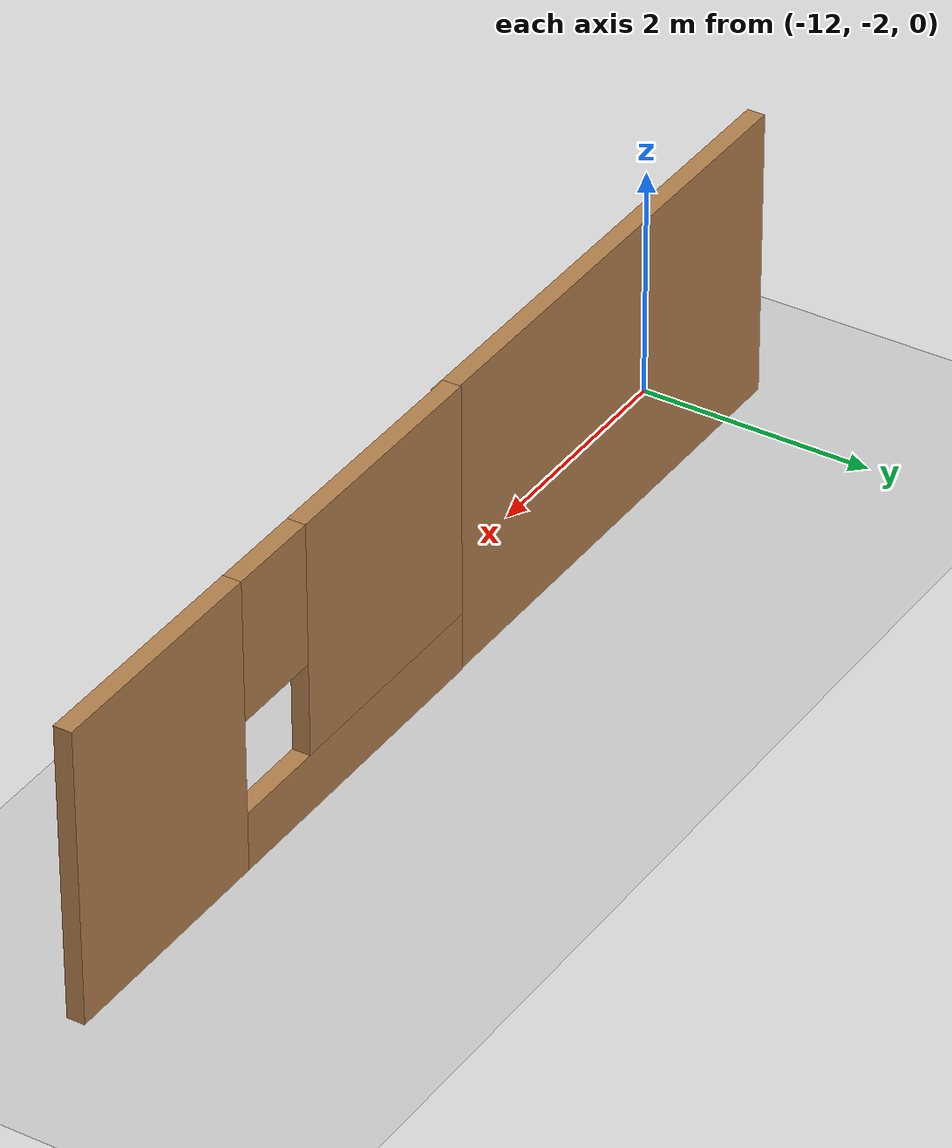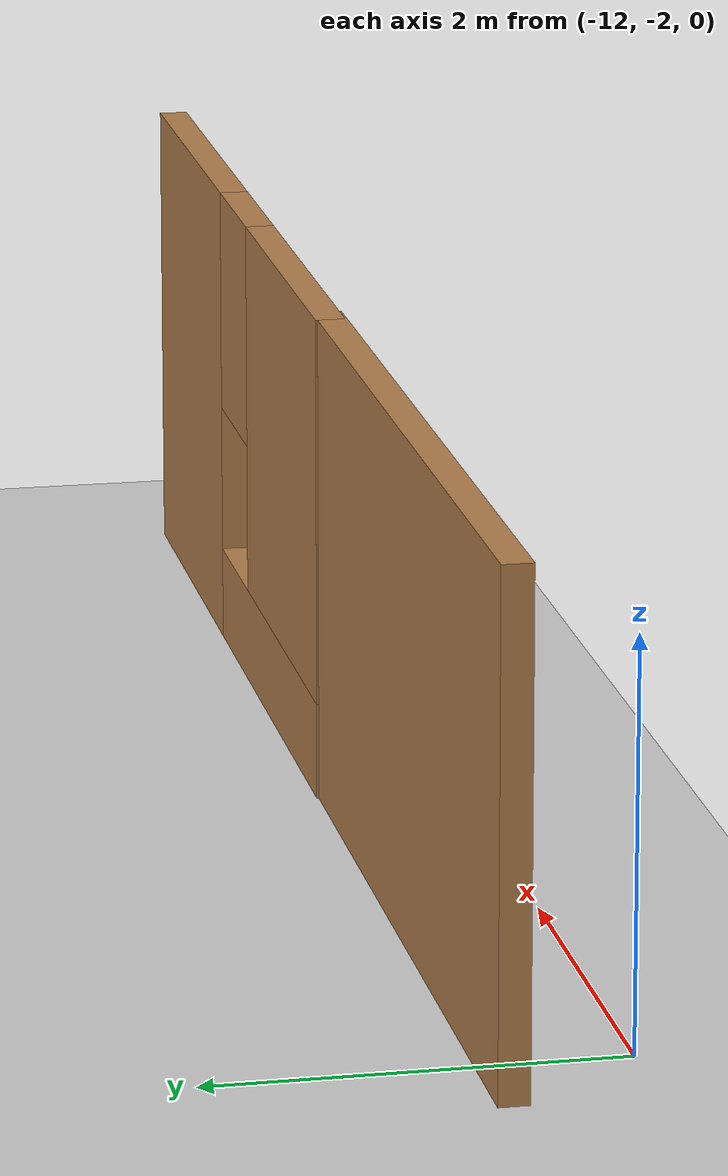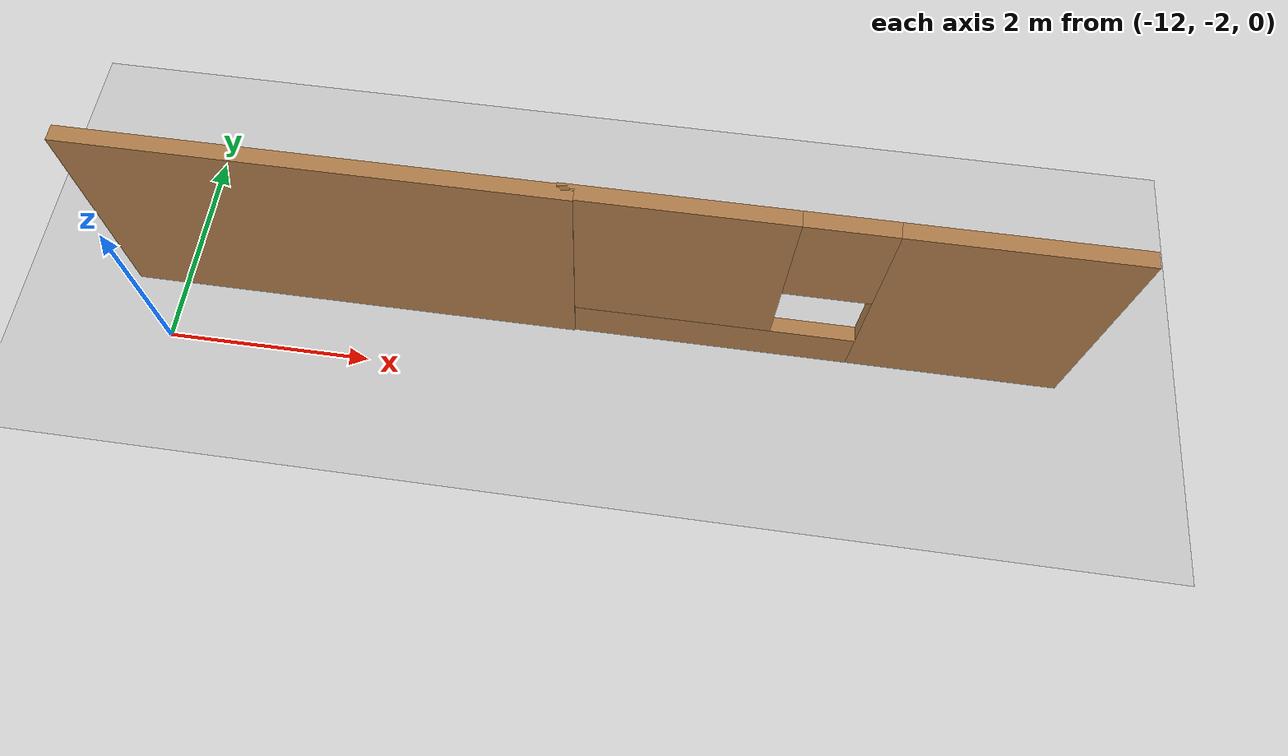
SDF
<sdf version="1.6">
 <world name="default">
  <model name="ground_plane">
   <static>1</static>
   <link name="link">
    <collision name="collision">
     <geometry><plane><normal>0 0 1</normal><size>100 100</size></plane></geometry>
     <surface><friction><ode><mu>100</mu><mu2>50</mu2></ode></friction></surface>
    </collision>
    <visual name="visual">
     <cast_shadows>0</cast_shadows>
     <geometry><plane><normal>0 0 1</normal><size>100 100</size></plane></geometry>
     <material>
      <script><uri>file://media/materials/scripts/gazebo.material</uri><name>Gazebo/Grey</name></script>
     </material>
    </visual>
   </link>
  </model>
  <model name="myHouse">
   <link name="Wall_13">
    <pose>-6.79329 -7.98623 0 0 0 -3.14082</pose>
    <visual name="Wall_13_Visual">
     <pose>0 0 1.25 0 -0 0</pose>
     <geometry><box><size>4.46127 0.15 2.5</size></box></geometry>
     <material>
      <script><uri>file://media/materials/scripts/gazebo.material</uri><name>Gazebo/Wood</name></script>
      <ambient>1 1 1 1</ambient>
      <diffuse>1 1 1 1</diffuse>
      <specular>0.2 0.2 0.2 1</specular>
      <emissive>0 0 0 1</emissive>
     </material>
     <meta><layer>0</layer></meta>
    </visual>
    <collision name="Wall_13_Collision">
     <pose>0 0 1.25 0 -0 0</pose>
     <geometry><box><size>4.46127 0.15 2.5</size></box></geometry>
     <surface>
      <friction>
       <ode><mu>1</mu><mu2>1</mu2><fdir1>0 0 0</fdir1><slip1>0</slip1><slip2>0</slip2></ode>
       <torsional>
        <coefficient>1</coefficient>
        <patch_radius>0</patch_radius>
        <surface_radius>0</surface_radius>
        <use_patch_radius>1</use_patch_radius>
        <ode><slip>0</slip></ode>
       </torsional>
      </friction>
      <bounce><restitution_coefficient>0</restitution_coefficient><threshold>1e+06</threshold></bounce>
      <contact>
       <collide_without_contact>0</collide_without_contact>
       <collide_without_contact_bitmask>1</collide_without_contact_bitmask>
       <collide_bitmask>1</collide_bitmask>
       <ode>
        <soft_cfm>0</soft_cfm>
        <soft_erp>0.2</soft_erp>
        <kp>1e+13</kp>
        <kd>1</kd>
        <max_vel>0.01</max_vel>
        <min_depth>0</min_depth>
       </ode>
       <bullet>
        <split_impulse>1</split_impulse>
        <split_impulse_penetration_threshold>-0.01</split_impulse_penetration_threshold>
        <soft_cfm>0</soft_cfm>
        <soft_erp>0.2</soft_erp>
        <kp>1e+13</kp>
        <kd>1</kd>
       </bullet>
      </contact>
     </surface>
    </collision>
   </link>
   <link name="Wall_7">
    <pose>-2.28871 -7.97269 0 0 0 -3.14079</pose>
    <visual name="Wall_7_Visual_0">
     <pose>-1.40995 0 1.25 0 -0 0</pose>
     <geometry><box><size>2.02832 0.15 2.5</size></box></geometry>
     <material>
      <script><uri>file://media/materials/scripts/gazebo.material</uri><name>Gazebo/Wood</name></script>
      <ambient>1 1 1 1</ambient>
      <diffuse>1 1 1 1</diffuse>
      <specular>0.2 0.2 0.2 1</specular>
      <emissive>0 0 0 1</emissive>
     </material>
     <meta><layer>0</layer></meta>
    </visual>
    <visual name="Wall_7_Visual_1">
     <pose>1.01416 0 0.25 0 -0 0</pose>
     <geometry><box><size>2.81989 0.15 0.5</size></box></geometry>
     <material>
      <script><uri>file://media/materials/scripts/gazebo.material</uri><name>Gazebo/Wood</name></script>
      <ambient>1 1 1 1</ambient>
      <diffuse>1 1 1 1</diffuse>
      <specular>0.2 0.2 0.2 1</specular>
      <emissive>0 0 0 1</emissive>
     </material>
     <meta><layer>0</layer></meta>
    </visual>
    <visual name="Wall_7_Visual_2">
     <pose>1.41416 0 1.5 0 -0 0</pose>
     <geometry><box><size>2.01989 0.15 2</size></box></geometry>
     <material>
      <script><uri>file://media/materials/scripts/gazebo.material</uri><name>Gazebo/Wood</name></script>
      <ambient>1 1 1 1</ambient>
      <diffuse>1 1 1 1</diffuse>
      <specular>0.2 0.2 0.2 1</specular>
      <emissive>0 0 0 1</emissive>
     </material>
     <meta><layer>0</layer></meta>
    </visual>
    <visual name="Wall_7_Visual_3">
     <pose>0.00421 0 1.9 0 -0 0</pose>
     <geometry><box><size>0.8 0.15 1.2</size></box></geometry>
     <material>
      <script><uri>file://media/materials/scripts/gazebo.material</uri><name>Gazebo/Wood</name></script>
      <ambient>1 1 1 1</ambient>
      <diffuse>1 1 1 1</diffuse>
      <specular>0.2 0.2 0.2 1</specular>
      <emissive>0 0 0 1</emissive>
     </material>
     <meta><layer>0</layer></meta>
    </visual>
    <collision name="Wall_7_Collision_0">
     <pose>-1.40995 0 1.25 0 -0 0</pose>
     <geometry><box><size>2.02832 0.15 2.5</size></box></geometry>
     <surface>
      <friction>
       <ode><mu>1</mu><mu2>1</mu2><fdir1>0 0 0</fdir1><slip1>0</slip1><slip2>0</slip2></ode>
       <torsional>
        <coefficient>1</coefficient>
        <patch_radius>0</patch_radius>
        <surface_radius>0</surface_radius>
        <use_patch_radius>1</use_patch_radius>
        <ode><slip>0</slip></ode>
       </torsional>
      </friction>
      <bounce><restitution_coefficient>0</restitution_coefficient><threshold>1e+06</threshold></bounce>
      <contact>
       <collide_without_contact>0</collide_without_contact>
       <collide_without_contact_bitmask>1</collide_without_contact_bitmask>
       <collide_bitmask>1</collide_bitmask>
       <ode>
        <soft_cfm>0</soft_cfm>
        <soft_erp>0.2</soft_erp>
        <kp>1e+13</kp>
        <kd>1</kd>
        <max_vel>0.01</max_vel>
        <min_depth>0</min_depth>
       </ode>
       <bullet>
        <split_impulse>1</split_impulse>
        <split_impulse_penetration_threshold>-0.01</split_impulse_penetration_threshold>
        <soft_cfm>0</soft_cfm>
        <soft_erp>0.2</soft_erp>
        <kp>1e+13</kp>
        <kd>1</kd>
       </bullet>
      </contact>
     </surface>
    </collision>
    <collision name="Wall_7_Collision_1">
     <pose>1.01416 0 0.25 0 -0 0</pose>
     <geometry><box><size>2.81989 0.15 0.5</size></box></geometry>
     <surface>
      <friction>
       <ode><mu>1</mu><mu2>1</mu2><fdir1>0 0 0</fdir1><slip1>0</slip1><slip2>0</slip2></ode>
       <torsional>
        <coefficient>1</coefficient>
        <patch_radius>0</patch_radius>
        <surface_radius>0</surface_radius>
        <use_patch_radius>1</use_patch_radius>
        <ode><slip>0</slip></ode>
       </torsional>
      </friction>
      <bounce><restitution_coefficient>0</restitution_coefficient><threshold>1e+06</threshold></bounce>
      <contact>
       <collide_without_contact>0</collide_without_contact>
       <collide_without_contact_bitmask>1</collide_without_contact_bitmask>
       <collide_bitmask>1</collide_bitmask>
       <ode>
        <soft_cfm>0</soft_cfm>
        <soft_erp>0.2</soft_erp>
        <kp>1e+13</kp>
        <kd>1</kd>
        <max_vel>0.01</max_vel>
        <min_depth>0</min_depth>
       </ode>
       <bullet>
        <split_impulse>1</split_impulse>
        <split_impulse_penetration_threshold>-0.01</split_impulse_penetration_threshold>
        <soft_cfm>0</soft_cfm>
        <soft_erp>0.2</soft_erp>
        <kp>1e+13</kp>
        <kd>1</kd>
       </bullet>
      </contact>
     </surface>
    </collision>
    <collision name="Wall_7_Collision_2">
     <pose>1.41416 0 1.5 0 -0 0</pose>
     <geometry><box><size>2.01989 0.15 2</size></box></geometry>
     <surface>
      <friction>
       <ode><mu>1</mu><mu2>1</mu2><fdir1>0 0 0</fdir1><slip1>0</slip1><slip2>0</slip2></ode>
       <torsional>
        <coefficient>1</coefficient>
        <patch_radius>0</patch_radius>
        <surface_radius>0</surface_radius>
        <use_patch_radius>1</use_patch_radius>
        <ode><slip>0</slip></ode>
       </torsional>
      </friction>
      <bounce><restitution_coefficient>0</restitution_coefficient><threshold>1e+06</threshold></bounce>
      <contact>
       <collide_without_contact>0</collide_without_contact>
       <collide_without_contact_bitmask>1</collide_without_contact_bitmask>
       <collide_bitmask>1</collide_bitmask>
       <ode>
        <soft_cfm>0</soft_cfm>
        <soft_erp>0.2</soft_erp>
        <kp>1e+13</kp>
        <kd>1</kd>
        <max_vel>0.01</max_vel>
        <min_depth>0</min_depth>
       </ode>
       <bullet>
        <split_impulse>1</split_impulse>
        <split_impulse_penetration_threshold>-0.01</split_impulse_penetration_threshold>
        <soft_cfm>0</soft_cfm>
        <soft_erp>0.2</soft_erp>
        <kp>1e+13</kp>
        <kd>1</kd>
       </bullet>
      </contact>
     </surface>
    </collision>
    <collision name="Wall_7_Collision_3">
     <pose>0.00421 0 1.9 0 -0 0</pose>
     <geometry><box><size>0.8 0.15 1.2</size></box></geometry>
     <surface>
      <friction>
       <ode><mu>1</mu><mu2>1</mu2><fdir1>0 0 0</fdir1><slip1>0</slip1><slip2>0</slip2></ode>
       <torsional>
        <coefficient>1</coefficient>
        <patch_radius>0</patch_radius>
        <surface_radius>0</surface_radius>
        <use_patch_radius>1</use_patch_radius>
        <ode><slip>0</slip></ode>
       </torsional>
      </friction>
      <bounce><restitution_coefficient>0</restitution_coefficient><threshold>1e+06</threshold></bounce>
      <contact>
       <collide_without_contact>0</collide_without_contact>
       <collide_without_contact_bitmask>1</collide_without_contact_bitmask>
       <collide_bitmask>1</collide_bitmask>
       <ode>
        <soft_cfm>0</soft_cfm>
        <soft_erp>0.2</soft_erp>
        <kp>1e+13</kp>
        <kd>1</kd>
        <max_vel>0.01</max_vel>
        <min_depth>0</min_depth>
       </ode>
       <bullet>
        <split_impulse>1</split_impulse>
        <split_impulse_penetration_threshold>-0.01</split_impulse_penetration_threshold>
        <soft_cfm>0</soft_cfm>
        <soft_erp>0.2</soft_erp>
        <kp>1e+13</kp>
        <kd>1</kd>
       </bullet>
      </contact>
     </surface>
    </collision>
   </link>
   <static>1</static>
   <pose>-3.47025 6.64899 0 0 -0 0</pose>
  </model>
 </world>
</sdf>
